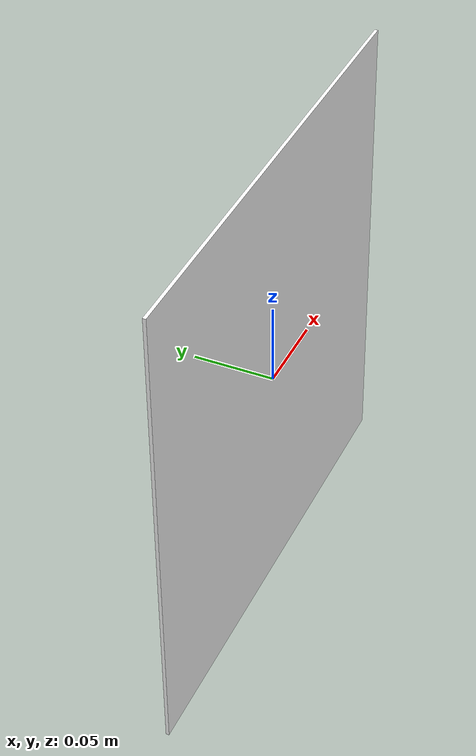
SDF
<?xml version="1.0"?>
<sdf version="1.8">
  <model name="erc_number_marker">
    <static>true</static>
    <link name="number_marker_base_link">

      <visual name="base_link_number_marker_visual">
        <pose>0 0 0 0 0 0</pose>
        <geometry>
        <box><size>0.3 0.002 0.3</size></box>
        </geometry>
        <material>
          <ambient>1 1 1 1</ambient>
          <diffuse>1 1 1 1</diffuse>
          <pbr>
            <metal>
              <albedo_map>model://erc_description/models/number_marker/textures/NUMBER_PLACEHOLDER.png</albedo_map>
              <roughness>1.0</roughness>
              <metalness>0.0</metalness>
            </metal>
          </pbr>
        </material>
      </visual>

    </link>
  </model>
</sdf>
